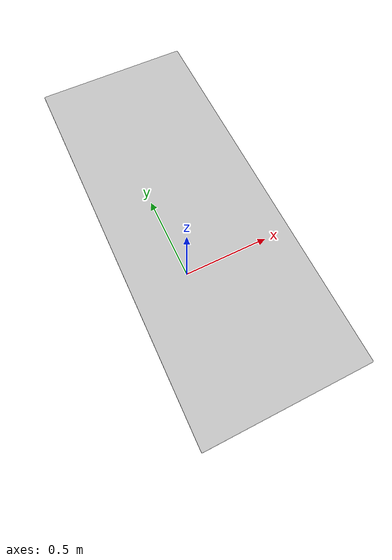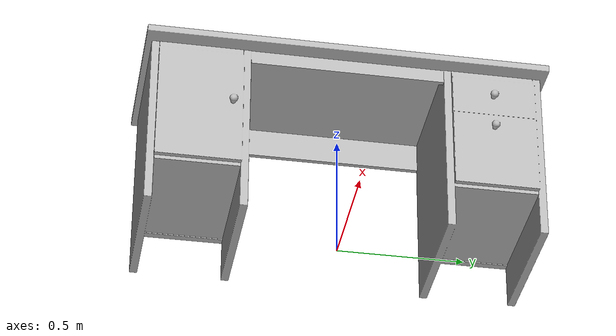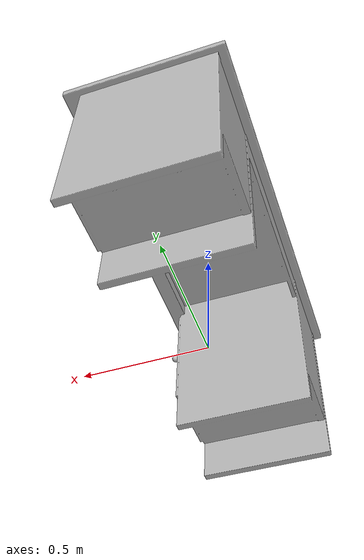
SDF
<?xml version='1.0'?>
<sdf version='1.4'>
  <model name='107'>
    <pose>0 0 0 0 0 0</pose>
    <static>true</static>
    <link name='link'>
      <collision name='collision'>
        <pose>0 0 0 0 0 0</pose>
        <geometry>
          <box>
            <size>0.66 1.6 2</size>
          </box>
        </geometry>
      </collision>
      <visual name='visual'>
        <pose>0 0 0 0 0 0</pose>
        <geometry>
          <mesh><uri>model://107/107.dae</uri></mesh>
        </geometry>
      </visual>
    </link>
  </model>
</sdf>
